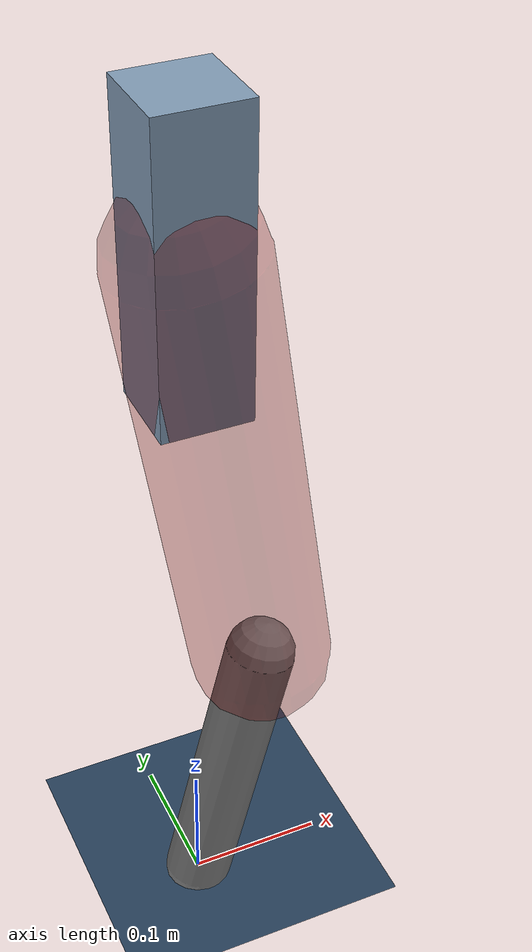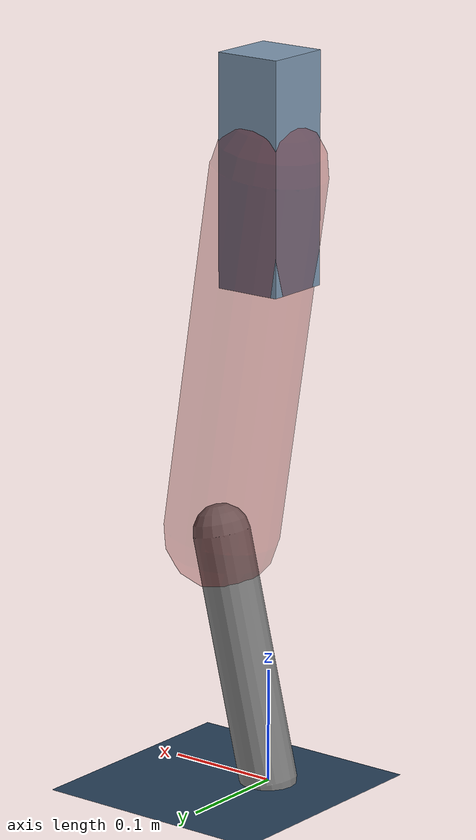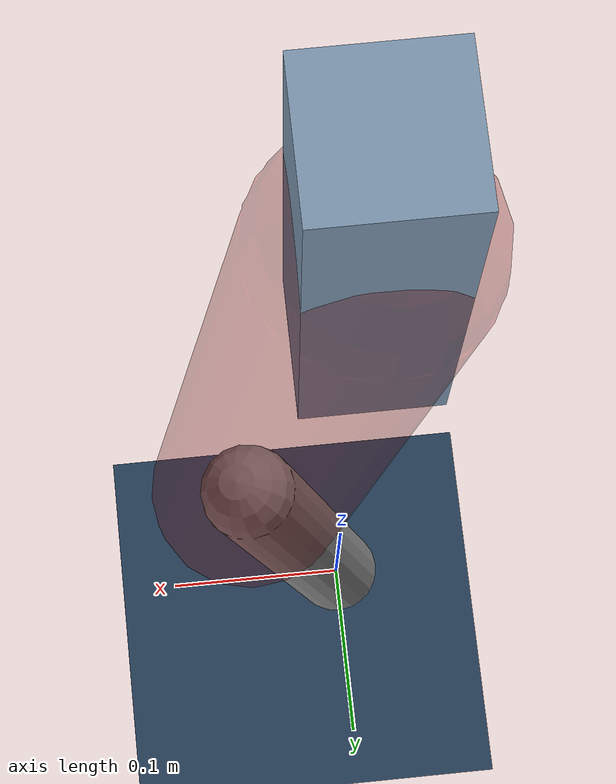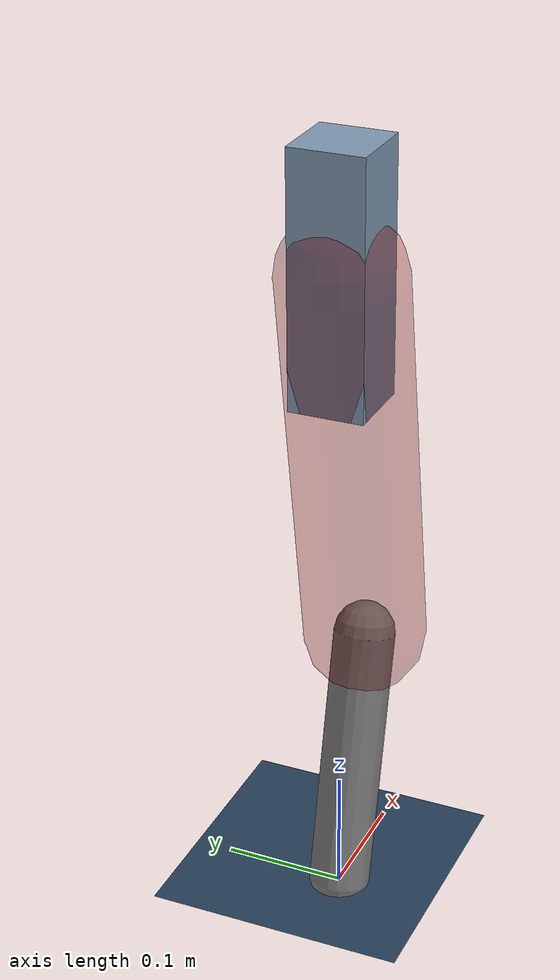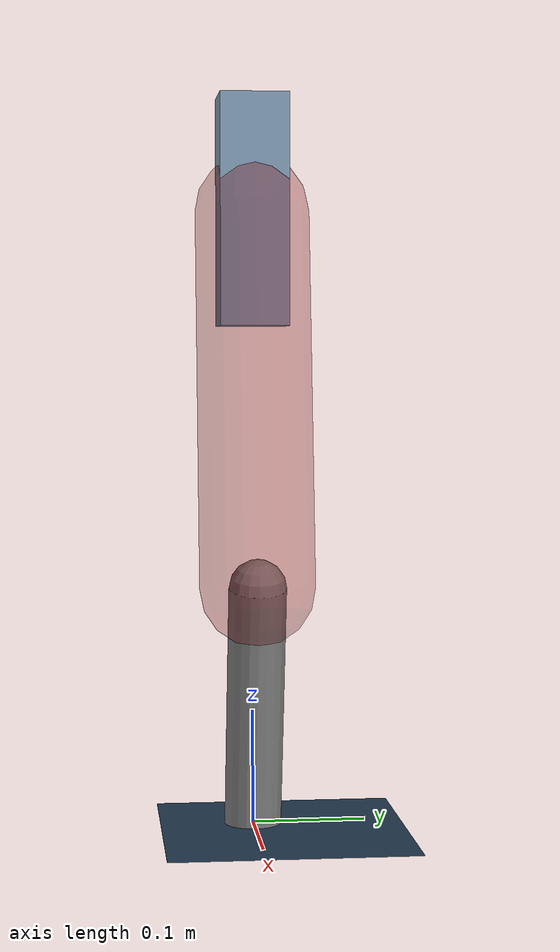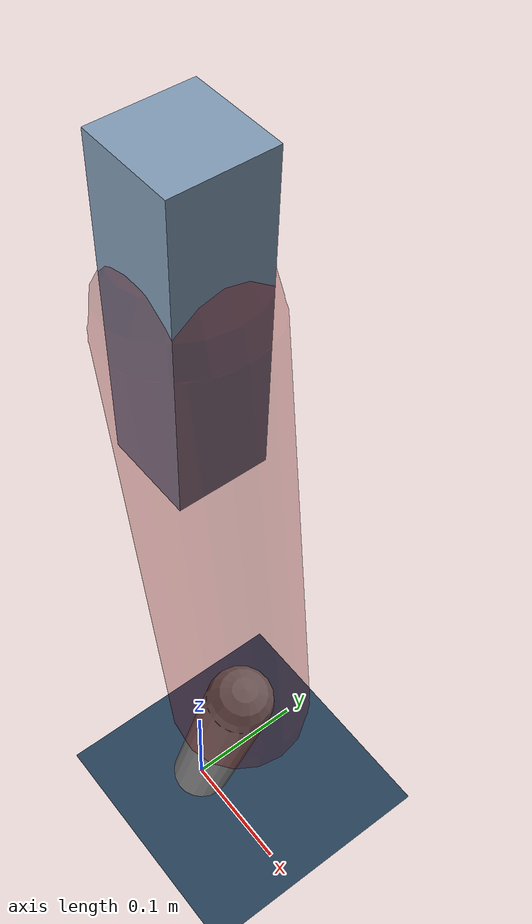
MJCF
<mujoco model="Hopper2D">
	<compiler inertiafromgeom="true" angle="radian" />
	<option timestep="0.001" integrator="implicit" cone="elliptic" solver="Newton" tolerance="1e-10" />

	<default>
		<geom contype="1" conaffinity="1" condim="3" friction="2 0.005 0.0001" solref="0.005 1" />
		<joint limited="true" damping="0.1" />
	</default>

	<asset>
		<texture name="skybox" type="skybox" builtin="gradient" rgb1=".4 .6 .8" rgb2="0 0 0" width="800" height="800" />
		<texture name="grid" type="2d" builtin="checker" rgb1=".1 .2 .3" rgb2=".2 .3 .4" width="300" height="300" mark="edge" markrgb=".2 .3 .4" />
		<material name="ground" texture="grid" texrepeat="1 1" texuniform="true" reflectance="0.1" />
		<material name="leg" rgba="0.5 0.6 0.7 1" />
	</asset>

	<worldbody>

		<geom name="floor" type="plane" size="5 5 0.25" material="ground" />

		<light directional="false" diffuse="0.8 0.8 0.8" specular="0.3 0.3 0.3" pos="0 0 2" dir="0 0 -1" />
		<light mode="targetbodycom" target="base" directional="false" diffuse="0.8 0.8 0.8" specular="0.3 0.3 0.3" pos="0 0 2" dir="0 0 -1" />

		<camera name="fixed" pos="0 -2 1" xyaxes="1 0 0 0 0 1" />
		<camera name="tracking" mode="trackcom" pos="0 -3 1" />

		<body name="root" pos="0 0 0.5392951454966161">
			<joint name="slide_x" type="slide" axis="1 0 0" range="-100 100" />
			<joint name="slide_z" type="slide" axis="0 0 1" range="0 10" />

			<body name="base" pos="0 0 0">
				<geom name="torso" type="box" size="0.03 0.03 0.1" mass="3.18" material="leg" />

				<body name="link1" pos="0 0 0" euler="0 1.4147883529736176 0">
					<joint type="hinge" axis="0 -1 0" pos="0 0 0" name="hinge1" limited="true" range="-3.14 3.14" stiffness="0" damping="0.1" />
					<geom name="thigh" type="capsule" fromto="0 0 0 0.3288888953924837 0 0" size="0.05" rgba="0.5 0 0 0.3" mass="1.0677889070989544" />

					<body name="link2" pos="0.3288888953924837 0 0" euler="0 0.38998808633459725 0">
						<joint type="hinge" axis="0 -1 0" pos="0 0 0" name="hinge2" limited="true" range="-3.14 3.14" stiffness="0" damping="0.1" />
						<geom name="shank" type="capsule" fromto="0 0 0 0.22040625010413234 0 0" size="0.025" mass="0.4180250000833059" />

					</body>
				</body>
			</body>
		</body>
	</worldbody>

	<actuator>
		<motor name="torque1" joint="hinge1" ctrlrange="-107.43533739958356 107.43533739958356" ctrllimited="true" gear="1" />
		<motor name="torque2" joint="hinge2" ctrlrange="-130.90851585909644 130.90851585909644" ctrllimited="true" gear="1" />
	</actuator>
</mujoco>
